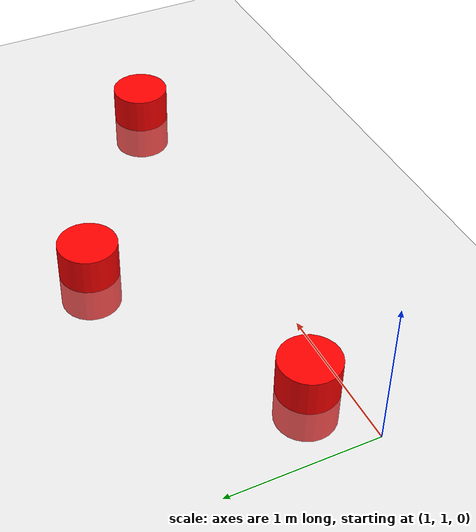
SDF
<?xml version="1.0" ?>
<sdf version="1.6">
  <world name="obstacle_course">

    <include>
      <uri>model://ground_plane</uri>
    </include>

    <include>
      <uri>model://sun</uri>
    </include>

    <!-- Obstacle 1 — sits on path between waypoint 1 and 2 -->
    <model name="obstacle_1">
      <static>true</static>
      <pose>1.5 1.2 0.0 0 0 0</pose>
      <link name="link">
        <collision name="collision">
          <geometry>
            <cylinder>
              <radius>0.2</radius>
              <length>0.5</length>
            </cylinder>
          </geometry>
        </collision>
        <visual name="visual">
          <geometry>
            <cylinder>
              <radius>0.2</radius>
              <length>0.5</length>
            </cylinder>
          </geometry>
          <material>
            <ambient>1 0 0 1</ambient>
            <diffuse>1 0 0 1</diffuse>
          </material>
        </visual>
      </link>
    </model>

    <!-- Obstacle 2 — sits on path between waypoint 3 and 4 -->
    <model name="obstacle_2">
      <static>true</static>
      <pose>3.0 2.0 0.0 0 0 0</pose>
      <link name="link">
        <collision name="collision">
          <geometry>
            <cylinder>
              <radius>0.2</radius>
              <length>0.5</length>
            </cylinder>
          </geometry>
        </collision>
        <visual name="visual">
          <geometry>
            <cylinder>
              <radius>0.2</radius>
              <length>0.5</length>
            </cylinder>
          </geometry>
          <material>
            <ambient>1 0 0 1</ambient>
            <diffuse>1 0 0 1</diffuse>
          </material>
        </visual>
      </link>
    </model>

    <!-- Obstacle 3 — sits on path between waypoint 4 and 5 -->
    <model name="obstacle_3">
      <static>true</static>
      <pose>4.5 1.0 0.0 0 0 0</pose>
      <link name="link">
        <collision name="collision">
          <geometry>
            <cylinder>
              <radius>0.2</radius>
              <length>0.5</length>
            </cylinder>
          </geometry>
        </collision>
        <visual name="visual">
          <geometry>
            <cylinder>
              <radius>0.2</radius>
              <length>0.5</length>
            </cylinder>
          </geometry>
          <material>
            <ambient>1 0 0 1</ambient>
            <diffuse>1 0 0 1</diffuse>
          </material>
        </visual>
      </link>
    </model>

  </world>
</sdf>
